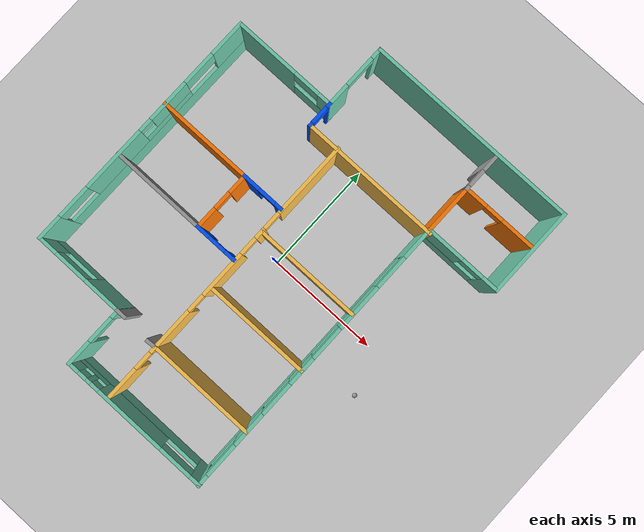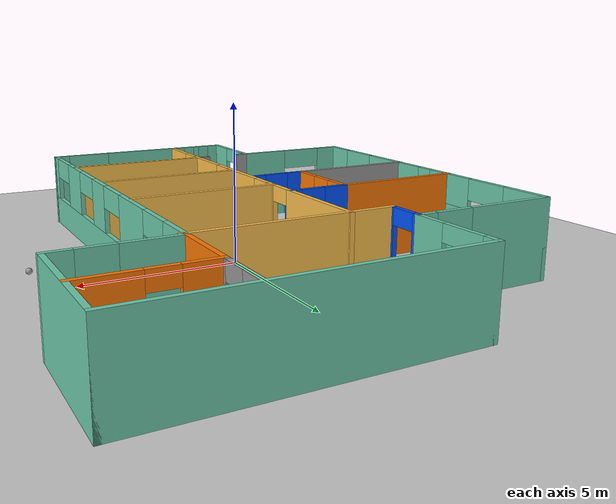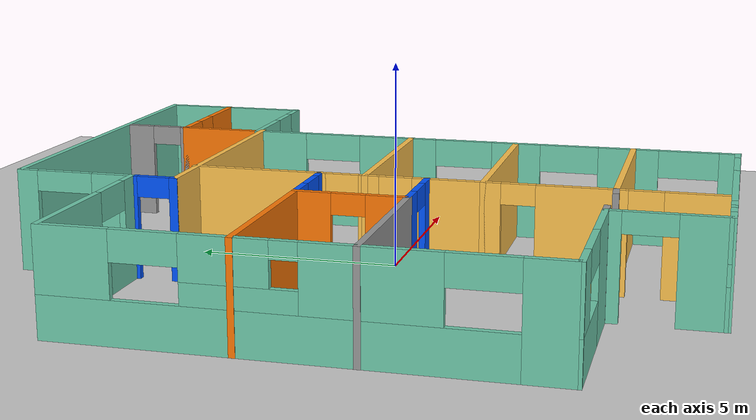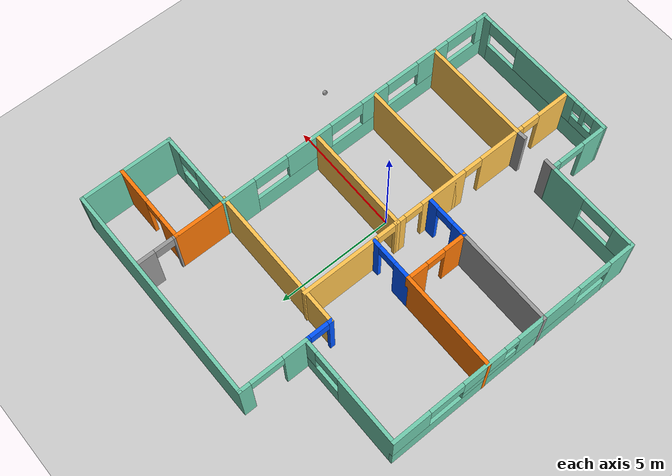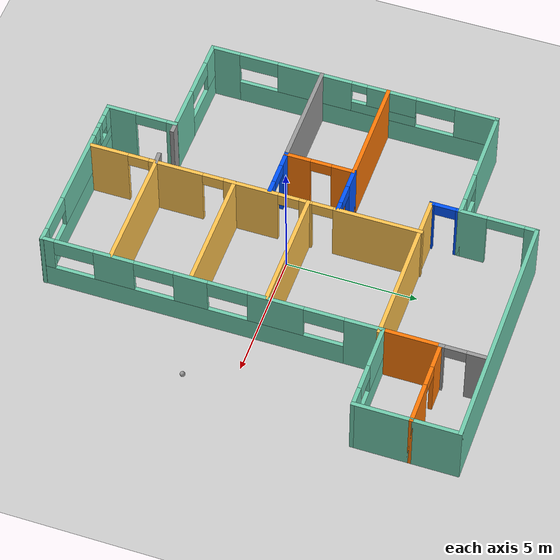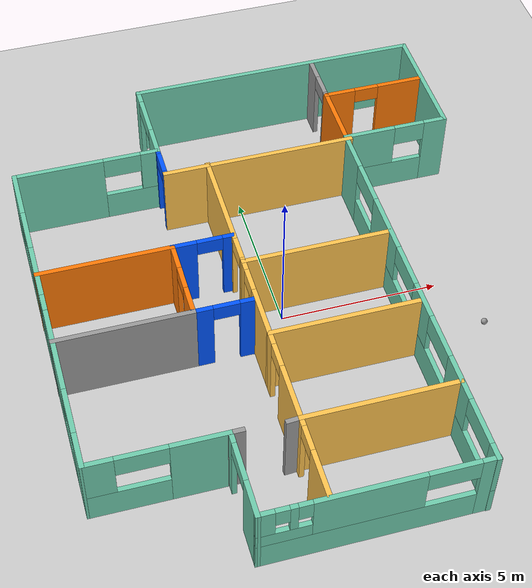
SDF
<sdf version="1.6">
 <world name="default">
  <model name="ground_plane">
   <static>1</static>
   <link name="link">
    <collision name="collision">
     <geometry><plane><normal>0 0 1</normal><size>100 100</size></plane></geometry>
     <surface><friction><ode><mu>100</mu><mu2>50</mu2></ode></friction></surface>
    </collision>
    <visual name="visual">
     <cast_shadows>0</cast_shadows>
     <geometry><plane><normal>0 0 1</normal><size>100 100</size></plane></geometry>
     <material>
      <script><uri>file://media/materials/scripts/gazebo.material</uri><name>Gazebo/Grey</name></script>
     </material>
    </visual>
   </link>
  </model>
  <model name="Building_0">
   <pose>-0.10939 0.312167 0 0 -0 0</pose>
   <link name="Wall_0">
    <pose>-6.97053 -0.091308 0 0 -0 1.5708</pose>
    <visual name="Wall_0_Visual_0">
     <pose>-5.0443 0 1.25 0 -0 0</pose>
     <geometry><box><size>1.1614 0.15 2.5</size></box></geometry>
     <material>
      <script><uri>file://media/materials/scripts/gazebo.material</uri><name>Gazebo/Grey</name></script>
      <ambient>0.435294 0.796078 0.67451 1</ambient>
     </material>
     <meta><layer>0</layer></meta>
    </visual>
    <collision name="Wall_0_Collision_0">
     <geometry><box><size>1.1614 0.15 2.5</size></box></geometry>
     <pose>-5.0443 0 1.25 0 -0 0</pose>
    </collision>
    <visual name="Wall_0_Visual_1">
     <pose>0.580698 0 0.5 0 -0 0</pose>
     <geometry><box><size>10.0886 0.15 1</size></box></geometry>
     <material>
      <script><uri>file://media/materials/scripts/gazebo.material</uri><name>Gazebo/Grey</name></script>
      <ambient>0.435294 0.796078 0.67451 1</ambient>
     </material>
     <meta><layer>0</layer></meta>
    </visual>
    <collision name="Wall_0_Collision_1">
     <geometry><box><size>10.0886 0.15 1</size></box></geometry>
     <pose>0.580698 0 0.5 0 -0 0</pose>
    </collision>
    <visual name="Wall_0_Visual_2">
     <pose>-1.51094 0 1.75 0 -0 0</pose>
     <geometry><box><size>2.90533 0.15 1.5</size></box></geometry>
     <material>
      <script><uri>file://media/materials/scripts/gazebo.material</uri><name>Gazebo/Grey</name></script>
      <ambient>0.435294 0.796078 0.67451 1</ambient>
     </material>
     <meta><layer>0</layer></meta>
    </visual>
    <collision name="Wall_0_Collision_2">
     <geometry><box><size>2.90533 0.15 1.5</size></box></geometry>
     <pose>-1.51094 0 1.75 0 -0 0</pose>
    </collision>
    <visual name="Wall_0_Visual_3">
     <pose>4.78872 0 1.75 0 -0 0</pose>
     <geometry><box><size>1.67255 0.15 1.5</size></box></geometry>
     <material>
      <script><uri>file://media/materials/scripts/gazebo.material</uri><name>Gazebo/Grey</name></script>
      <ambient>0.435294 0.796078 0.67451 1</ambient>
     </material>
     <meta><layer>0</layer></meta>
    </visual>
    <collision name="Wall_0_Collision_3">
     <geometry><box><size>1.67255 0.15 1.5</size></box></geometry>
     <pose>4.78872 0 1.75 0 -0 0</pose>
    </collision>
    <visual name="Wall_0_Visual_4">
     <pose>1.19709 0 1.25 0 -0 0</pose>
     <geometry><box><size>2.51072 0.15 0.5</size></box></geometry>
     <material>
      <script><uri>file://media/materials/scripts/gazebo.material</uri><name>Gazebo/Grey</name></script>
      <ambient>0.435294 0.796078 0.67451 1</ambient>
     </material>
     <meta><layer>0</layer></meta>
    </visual>
    <collision name="Wall_0_Collision_4">
     <geometry><box><size>2.51072 0.15 0.5</size></box></geometry>
     <pose>1.19709 0 1.25 0 -0 0</pose>
    </collision>
    <visual name="Wall_0_Visual_5">
     <pose>1.49709 0 2 0 -0 0</pose>
     <geometry><box><size>1.91072 0.15 1</size></box></geometry>
     <material>
      <script><uri>file://media/materials/scripts/gazebo.material</uri><name>Gazebo/Grey</name></script>
      <ambient>0.435294 0.796078 0.67451 1</ambient>
     </material>
     <meta><layer>0</layer></meta>
    </visual>
    <collision name="Wall_0_Collision_5">
     <geometry><box><size>1.91072 0.15 1</size></box></geometry>
     <pose>1.49709 0 2 0 -0 0</pose>
    </collision>
    <visual name="Wall_0_Visual_6">
     <pose>-3.7136 0 2.15 0 -0 0</pose>
     <geometry><box><size>1.5 0.15 0.7</size></box></geometry>
     <material>
      <script><uri>file://media/materials/scripts/gazebo.material</uri><name>Gazebo/Grey</name></script>
      <ambient>0.435294 0.796078 0.67451 1</ambient>
     </material>
     <meta><layer>0</layer></meta>
    </visual>
    <collision name="Wall_0_Collision_6">
     <geometry><box><size>1.5 0.15 0.7</size></box></geometry>
     <pose>-3.7136 0 2.15 0 -0 0</pose>
    </collision>
    <visual name="Wall_0_Visual_7">
     <pose>3.20245 0 2.15 0 -0 0</pose>
     <geometry><box><size>1.5 0.15 0.7</size></box></geometry>
     <material>
      <script><uri>file://media/materials/scripts/gazebo.material</uri><name>Gazebo/Grey</name></script>
      <ambient>0.435294 0.796078 0.67451 1</ambient>
     </material>
     <meta><layer>0</layer></meta>
    </visual>
    <collision name="Wall_0_Collision_7">
     <geometry><box><size>1.5 0.15 0.7</size></box></geometry>
     <pose>3.20245 0 2.15 0 -0 0</pose>
    </collision>
    <visual name="Wall_0_Visual_8">
     <pose>0.241731 0 2.3 0 -0 0</pose>
     <geometry><box><size>0.6 0.15 0.4</size></box></geometry>
     <material>
      <script><uri>file://media/materials/scripts/gazebo.material</uri><name>Gazebo/Grey</name></script>
      <ambient>0.435294 0.796078 0.67451 1</ambient>
     </material>
     <meta><layer>0</layer></meta>
    </visual>
    <collision name="Wall_0_Collision_8">
     <geometry><box><size>0.6 0.15 0.4</size></box></geometry>
     <pose>0.241731 0 2.3 0 -0 0</pose>
    </collision>
   </link>
   <link name="Wall_1">
    <pose>-4.67053 5.45869 0 0 -0 0</pose>
    <visual name="Wall_1_Visual_0">
     <pose>-0.923744 0 1.25 0 -0 0</pose>
     <geometry><box><size>2.90251 0.15 2.5</size></box></geometry>
     <material>
      <script><uri>file://media/materials/scripts/gazebo.material</uri><name>Gazebo/Grey</name></script>
      <ambient>0.435294 0.796078 0.67451 1</ambient>
     </material>
     <meta><layer>0</layer></meta>
    </visual>
    <collision name="Wall_1_Collision_0">
     <geometry><box><size>2.90251 0.15 2.5</size></box></geometry>
     <pose>-0.923744 0 1.25 0 -0 0</pose>
    </collision>
    <visual name="Wall_1_Visual_1">
     <pose>1.45126 0 0.5 0 -0 0</pose>
     <geometry><box><size>1.84749 0.15 1</size></box></geometry>
     <material>
      <script><uri>file://media/materials/scripts/gazebo.material</uri><name>Gazebo/Grey</name></script>
      <ambient>0.435294 0.796078 0.67451 1</ambient>
     </material>
     <meta><layer>0</layer></meta>
    </visual>
    <collision name="Wall_1_Collision_1">
     <geometry><box><size>1.84749 0.15 1</size></box></geometry>
     <pose>1.45126 0 0.5 0 -0 0</pose>
    </collision>
    <visual name="Wall_1_Visual_2">
     <pose>2.05126 0 1.75 0 -0 0</pose>
     <geometry><box><size>0.647488 0.15 1.5</size></box></geometry>
     <material>
      <script><uri>file://media/materials/scripts/gazebo.material</uri><name>Gazebo/Grey</name></script>
      <ambient>0.435294 0.796078 0.67451 1</ambient>
     </material>
     <meta><layer>0</layer></meta>
    </visual>
    <collision name="Wall_1_Collision_2">
     <geometry><box><size>0.647488 0.15 1.5</size></box></geometry>
     <pose>2.05126 0 1.75 0 -0 0</pose>
    </collision>
    <visual name="Wall_1_Visual_3">
     <pose>1.12751 0 2.15 0 -0 0</pose>
     <geometry><box><size>1.2 0.15 0.7</size></box></geometry>
     <material>
      <script><uri>file://media/materials/scripts/gazebo.material</uri><name>Gazebo/Grey</name></script>
      <ambient>0.435294 0.796078 0.67451 1</ambient>
     </material>
     <meta><layer>0</layer></meta>
    </visual>
    <collision name="Wall_1_Collision_3">
     <geometry><box><size>1.2 0.15 0.7</size></box></geometry>
     <pose>1.12751 0 2.15 0 -0 0</pose>
    </collision>
   </link>
   <link name="Wall_10">
    <pose>5.30447 4.45869 0 0 -0 3.14159</pose>
    <visual name="Wall_10_Visual_0">
     <pose>-1.36207 0 1.25 0 -0 0</pose>
     <geometry><box><size>0.775853 0.15 2.5</size></box></geometry>
     <material>
      <script><uri>file://media/materials/scripts/gazebo.material</uri><name>Gazebo/Grey</name></script>
      <ambient>0.435294 0.796078 0.67451 1</ambient>
     </material>
     <meta><layer>0</layer></meta>
    </visual>
    <collision name="Wall_10_Collision_0">
     <geometry><box><size>0.775853 0.15 2.5</size></box></geometry>
     <pose>-1.36207 0 1.25 0 -0 0</pose>
    </collision>
    <visual name="Wall_10_Visual_1">
     <pose>0.387926 0 0.5 0 -0 0</pose>
     <geometry><box><size>2.72415 0.15 1</size></box></geometry>
     <material>
      <script><uri>file://media/materials/scripts/gazebo.material</uri><name>Gazebo/Grey</name></script>
      <ambient>0.435294 0.796078 0.67451 1</ambient>
     </material>
     <meta><layer>0</layer></meta>
    </visual>
    <collision name="Wall_10_Collision_1">
     <geometry><box><size>2.72415 0.15 1</size></box></geometry>
     <pose>0.387926 0 0.5 0 -0 0</pose>
    </collision>
    <visual name="Wall_10_Visual_2">
     <pose>0.887926 0 1.75 0 -0 0</pose>
     <geometry><box><size>1.72415 0.15 1.5</size></box></geometry>
     <material>
      <script><uri>file://media/materials/scripts/gazebo.material</uri><name>Gazebo/Grey</name></script>
      <ambient>0.435294 0.796078 0.67451 1</ambient>
     </material>
     <meta><layer>0</layer></meta>
    </visual>
    <collision name="Wall_10_Collision_2">
     <geometry><box><size>1.72415 0.15 1.5</size></box></geometry>
     <pose>0.887926 0 1.75 0 -0 0</pose>
    </collision>
    <visual name="Wall_10_Visual_3">
     <pose>-0.474147 0 2.15 0 -0 0</pose>
     <geometry><box><size>1 0.15 0.7</size></box></geometry>
     <material>
      <script><uri>file://media/materials/scripts/gazebo.material</uri><name>Gazebo/Grey</name></script>
      <ambient>0.435294 0.796078 0.67451 1</ambient>
     </material>
     <meta><layer>0</layer></meta>
    </visual>
    <collision name="Wall_10_Collision_3">
     <geometry><box><size>1 0.15 0.7</size></box></geometry>
     <pose>-0.474147 0 2.15 0 -0 0</pose>
    </collision>
   </link>
   <link name="Wall_11">
    <pose>3.63708 -1.92496 0 0 0 -1.5696</pose>
    <visual name="Wall_11_Visual_0">
     <pose>-5.71761 0 1.25 0 -0 0</pose>
     <geometry><box><size>1.48209 0.15 2.5</size></box></geometry>
     <material>
      <script><uri>file://media/materials/scripts/gazebo.material</uri><name>Gazebo/Grey</name></script>
      <ambient>0.435294 0.796078 0.67451 1</ambient>
     </material>
     <meta><layer>0</layer></meta>
    </visual>
    <collision name="Wall_11_Collision_0">
     <geometry><box><size>1.48209 0.15 2.5</size></box></geometry>
     <pose>-5.71761 0 1.25 0 -0 0</pose>
    </collision>
    <visual name="Wall_11_Visual_1">
     <pose>0.741046 0 0.5 0 -0 0</pose>
     <geometry><box><size>11.4352 0.15 1</size></box></geometry>
     <material>
      <script><uri>file://media/materials/scripts/gazebo.material</uri><name>Gazebo/Grey</name></script>
      <ambient>0.435294 0.796078 0.67451 1</ambient>
     </material>
     <meta><layer>0</layer></meta>
    </visual>
    <collision name="Wall_11_Collision_1">
     <geometry><box><size>11.4352 0.15 1</size></box></geometry>
     <pose>0.741046 0 0.5 0 -0 0</pose>
    </collision>
    <visual name="Wall_11_Visual_2">
     <pose>-2.4339 0 1.75 0 -0 0</pose>
     <geometry><box><size>2.08532 0.15 1.5</size></box></geometry>
     <material>
      <script><uri>file://media/materials/scripts/gazebo.material</uri><name>Gazebo/Grey</name></script>
      <ambient>0.435294 0.796078 0.67451 1</ambient>
     </material>
     <meta><layer>0</layer></meta>
    </visual>
    <collision name="Wall_11_Collision_2">
     <geometry><box><size>2.08532 0.15 1.5</size></box></geometry>
     <pose>-2.4339 0 1.75 0 -0 0</pose>
    </collision>
    <visual name="Wall_11_Visual_3">
     <pose>0.746585 0 1.75 0 -0 0</pose>
     <geometry><box><size>1.27564 0.15 1.5</size></box></geometry>
     <material>
      <script><uri>file://media/materials/scripts/gazebo.material</uri><name>Gazebo/Grey</name></script>
      <ambient>0.435294 0.796078 0.67451 1</ambient>
     </material>
     <meta><layer>0</layer></meta>
    </visual>
    <collision name="Wall_11_Collision_3">
     <geometry><box><size>1.27564 0.15 1.5</size></box></geometry>
     <pose>0.746585 0 1.75 0 -0 0</pose>
    </collision>
    <visual name="Wall_11_Visual_4">
     <pose>3.6495 0 1.75 0 -0 0</pose>
     <geometry><box><size>1.53019 0.15 1.5</size></box></geometry>
     <material>
      <script><uri>file://media/materials/scripts/gazebo.material</uri><name>Gazebo/Grey</name></script>
      <ambient>0.435294 0.796078 0.67451 1</ambient>
     </material>
     <meta><layer>0</layer></meta>
    </visual>
    <collision name="Wall_11_Collision_4">
     <geometry><box><size>1.53019 0.15 1.5</size></box></geometry>
     <pose>3.6495 0 1.75 0 -0 0</pose>
    </collision>
    <visual name="Wall_11_Visual_5">
     <pose>6.18662 0 1.75 0 -0 0</pose>
     <geometry><box><size>0.544056 0.15 1.5</size></box></geometry>
     <material>
      <script><uri>file://media/materials/scripts/gazebo.material</uri><name>Gazebo/Grey</name></script>
      <ambient>0.435294 0.796078 0.67451 1</ambient>
     </material>
     <meta><layer>0</layer></meta>
    </visual>
    <collision name="Wall_11_Collision_5">
     <geometry><box><size>0.544056 0.15 1.5</size></box></geometry>
     <pose>6.18662 0 1.75 0 -0 0</pose>
    </collision>
    <visual name="Wall_11_Visual_6">
     <pose>-4.22656 0 2.15 0 -0 0</pose>
     <geometry><box><size>1.5 0.15 0.7</size></box></geometry>
     <material>
      <script><uri>file://media/materials/scripts/gazebo.material</uri><name>Gazebo/Grey</name></script>
      <ambient>0.435294 0.796078 0.67451 1</ambient>
     </material>
     <meta><layer>0</layer></meta>
    </visual>
    <collision name="Wall_11_Collision_6">
     <geometry><box><size>1.5 0.15 0.7</size></box></geometry>
     <pose>-4.22656 0 2.15 0 -0 0</pose>
    </collision>
    <visual name="Wall_11_Visual_7">
     <pose>-0.641237 0 2.15 0 -0 0</pose>
     <geometry><box><size>1.5 0.15 0.7</size></box></geometry>
     <material>
      <script><uri>file://media/materials/scripts/gazebo.material</uri><name>Gazebo/Grey</name></script>
      <ambient>0.435294 0.796078 0.67451 1</ambient>
     </material>
     <meta><layer>0</layer></meta>
    </visual>
    <collision name="Wall_11_Collision_7">
     <geometry><box><size>1.5 0.15 0.7</size></box></geometry>
     <pose>-0.641237 0 2.15 0 -0 0</pose>
    </collision>
    <visual name="Wall_11_Visual_8">
     <pose>2.13441 0 2.15 0 -0 0</pose>
     <geometry><box><size>1.5 0.15 0.7</size></box></geometry>
     <material>
      <script><uri>file://media/materials/scripts/gazebo.material</uri><name>Gazebo/Grey</name></script>
      <ambient>0.435294 0.796078 0.67451 1</ambient>
     </material>
     <meta><layer>0</layer></meta>
    </visual>
    <collision name="Wall_11_Collision_8">
     <geometry><box><size>1.5 0.15 0.7</size></box></geometry>
     <pose>2.13441 0 2.15 0 -0 0</pose>
    </collision>
    <visual name="Wall_11_Visual_9">
     <pose>5.1646 0 2.15 0 -0 0</pose>
     <geometry><box><size>1.5 0.15 0.7</size></box></geometry>
     <material>
      <script><uri>file://media/materials/scripts/gazebo.material</uri><name>Gazebo/Grey</name></script>
      <ambient>0.435294 0.796078 0.67451 1</ambient>
     </material>
     <meta><layer>0</layer></meta>
    </visual>
    <collision name="Wall_11_Collision_9">
     <geometry><box><size>1.5 0.15 0.7</size></box></geometry>
     <pose>5.1646 0 2.15 0 -0 0</pose>
    </collision>
   </link>
   <link name="Wall_12">
    <pose>0.359891 -8.2934 0 0 -0 3.14159</pose>
    <visual name="Wall_12_Visual_0">
     <pose>-3.10646 0 1.25 0 -0 0</pose>
     <geometry><box><size>0.537078 0.15 2.5</size></box></geometry>
     <material>
      <script><uri>file://media/materials/scripts/gazebo.material</uri><name>Gazebo/Grey</name></script>
      <ambient>0.435294 0.796078 0.67451 1</ambient>
     </material>
     <meta><layer>0</layer></meta>
    </visual>
    <collision name="Wall_12_Collision_0">
     <geometry><box><size>0.537078 0.15 2.5</size></box></geometry>
     <pose>-3.10646 0 1.25 0 -0 0</pose>
    </collision>
    <visual name="Wall_12_Visual_1">
     <pose>0.268539 0 0.5 0 -0 0</pose>
     <geometry><box><size>6.21292 0.15 1</size></box></geometry>
     <material>
      <script><uri>file://media/materials/scripts/gazebo.material</uri><name>Gazebo/Grey</name></script>
      <ambient>0.435294 0.796078 0.67451 1</ambient>
     </material>
     <meta><layer>0</layer></meta>
    </visual>
    <collision name="Wall_12_Collision_1">
     <geometry><box><size>6.21292 0.15 1</size></box></geometry>
     <pose>0.268539 0 0.5 0 -0 0</pose>
    </collision>
    <visual name="Wall_12_Visual_2">
     <pose>0.234137 0 1.75 0 -0 0</pose>
     <geometry><box><size>3.14412 0.15 1.5</size></box></geometry>
     <material>
      <script><uri>file://media/materials/scripts/gazebo.material</uri><name>Gazebo/Grey</name></script>
      <ambient>0.435294 0.796078 0.67451 1</ambient>
     </material>
     <meta><layer>0</layer></meta>
    </visual>
    <collision name="Wall_12_Collision_2">
     <geometry><box><size>3.14412 0.15 1.5</size></box></geometry>
     <pose>0.234137 0 1.75 0 -0 0</pose>
    </collision>
    <visual name="Wall_12_Visual_3">
     <pose>2.5906 0 1.25 0 -0 0</pose>
     <geometry><box><size>1.5688 0.15 0.5</size></box></geometry>
     <material>
      <script><uri>file://media/materials/scripts/gazebo.material</uri><name>Gazebo/Grey</name></script>
      <ambient>0.435294 0.796078 0.67451 1</ambient>
     </material>
     <meta><layer>0</layer></meta>
    </visual>
    <collision name="Wall_12_Collision_3">
     <geometry><box><size>1.5688 0.15 0.5</size></box></geometry>
     <pose>2.5906 0 1.25 0 -0 0</pose>
    </collision>
    <visual name="Wall_12_Visual_4">
     <pose>2.31846 0 2 0 -0 0</pose>
     <geometry><box><size>0.224526 0.15 1</size></box></geometry>
     <material>
      <script><uri>file://media/materials/scripts/gazebo.material</uri><name>Gazebo/Grey</name></script>
      <ambient>0.435294 0.796078 0.67451 1</ambient>
     </material>
     <meta><layer>0</layer></meta>
    </visual>
    <collision name="Wall_12_Collision_4">
     <geometry><box><size>0.224526 0.15 1</size></box></geometry>
     <pose>2.31846 0 2 0 -0 0</pose>
    </collision>
    <visual name="Wall_12_Visual_5">
     <pose>3.10286 0 2 0 -0 0</pose>
     <geometry><box><size>0.544278 0.15 1</size></box></geometry>
     <material>
      <script><uri>file://media/materials/scripts/gazebo.material</uri><name>Gazebo/Grey</name></script>
      <ambient>0.435294 0.796078 0.67451 1</ambient>
     </material>
     <meta><layer>0</layer></meta>
    </visual>
    <collision name="Wall_12_Collision_5">
     <geometry><box><size>0.544278 0.15 1</size></box></geometry>
     <pose>3.10286 0 2 0 -0 0</pose>
    </collision>
    <visual name="Wall_12_Visual_6">
     <pose>-2.08792 0 2.15 0 -0 0</pose>
     <geometry><box><size>1.5 0.15 0.7</size></box></geometry>
     <material>
      <script><uri>file://media/materials/scripts/gazebo.material</uri><name>Gazebo/Grey</name></script>
      <ambient>0.435294 0.796078 0.67451 1</ambient>
     </material>
     <meta><layer>0</layer></meta>
    </visual>
    <collision name="Wall_12_Collision_6">
     <geometry><box><size>1.5 0.15 0.7</size></box></geometry>
     <pose>-2.08792 0 2.15 0 -0 0</pose>
    </collision>
    <visual name="Wall_12_Visual_7">
     <pose>2.0062 0 2.2 0 -0 0</pose>
     <geometry><box><size>0.4 0.15 0.6</size></box></geometry>
     <material>
      <script><uri>file://media/materials/scripts/gazebo.material</uri><name>Gazebo/Grey</name></script>
      <ambient>0.435294 0.796078 0.67451 1</ambient>
     </material>
     <meta><layer>0</layer></meta>
    </visual>
    <collision name="Wall_12_Collision_7">
     <geometry><box><size>0.4 0.15 0.6</size></box></geometry>
     <pose>2.0062 0 2.2 0 -0 0</pose>
    </collision>
    <visual name="Wall_12_Visual_8">
     <pose>2.63072 0 2.2 0 -0 0</pose>
     <geometry><box><size>0.4 0.15 0.6</size></box></geometry>
     <material>
      <script><uri>file://media/materials/scripts/gazebo.material</uri><name>Gazebo/Grey</name></script>
      <ambient>0.435294 0.796078 0.67451 1</ambient>
     </material>
     <meta><layer>0</layer></meta>
    </visual>
    <collision name="Wall_12_Collision_8">
     <geometry><box><size>0.4 0.15 0.6</size></box></geometry>
     <pose>2.63072 0 2.2 0 -0 0</pose>
    </collision>
   </link>
   <link name="Wall_15">
    <pose>-2.93906 -6.97496 0 0 -0 1.57001</pose>
    <visual name="Wall_15_Visual_0">
     <pose>-0.811109 0 1.25 0 -0 0</pose>
     <geometry><box><size>1.16466 0.15 2.5</size></box></geometry>
     <material>
      <script><uri>file://media/materials/scripts/gazebo.material</uri><name>Gazebo/Grey</name></script>
      <ambient>0.435294 0.796078 0.67451 1</ambient>
     </material>
     <meta><layer>0</layer></meta>
    </visual>
    <collision name="Wall_15_Collision_0">
     <geometry><box><size>1.16466 0.15 2.5</size></box></geometry>
     <pose>-0.811109 0 1.25 0 -0 0</pose>
    </collision>
    <visual name="Wall_15_Visual_1">
     <pose>1.18233 0 1.25 0 -0 0</pose>
     <geometry><box><size>0.422219 0.15 2.5</size></box></geometry>
     <material>
      <script><uri>file://media/materials/scripts/gazebo.material</uri><name>Gazebo/Grey</name></script>
      <ambient>0.435294 0.796078 0.67451 1</ambient>
     </material>
     <meta><layer>0</layer></meta>
    </visual>
    <collision name="Wall_15_Collision_1">
     <geometry><box><size>0.422219 0.15 2.5</size></box></geometry>
     <pose>1.18233 0 1.25 0 -0 0</pose>
    </collision>
    <visual name="Wall_15_Visual_2">
     <pose>0.371221 0 2.25 0 -0 0</pose>
     <geometry><box><size>1.2 0.15 0.5</size></box></geometry>
     <material>
      <script><uri>file://media/materials/scripts/gazebo.material</uri><name>Gazebo/Grey</name></script>
      <ambient>0.435294 0.796078 0.67451 1</ambient>
     </material>
     <meta><layer>0</layer></meta>
    </visual>
    <collision name="Wall_15_Collision_2">
     <geometry><box><size>1.2 0.15 0.5</size></box></geometry>
     <pose>0.371221 0 2.25 0 -0 0</pose>
    </collision>
   </link>
   <link name="Wall_16">
    <pose>-4.96188 -5.64891 0 0 -0 3.13781</pose>
    <visual name="Wall_16_Visual_0">
     <pose>-1.21249 0 1.25 0 -0 0</pose>
     <geometry><box><size>1.74235 0.15 2.5</size></box></geometry>
     <material>
      <script><uri>file://media/materials/scripts/gazebo.material</uri><name>Gazebo/Grey</name></script>
      <ambient>0.435294 0.796078 0.67451 1</ambient>
     </material>
     <meta><layer>0</layer></meta>
    </visual>
    <collision name="Wall_16_Collision_0">
     <geometry><box><size>1.74235 0.15 2.5</size></box></geometry>
     <pose>-1.21249 0 1.25 0 -0 0</pose>
    </collision>
    <visual name="Wall_16_Visual_1">
     <pose>0.871176 0 0.5 0 -0 0</pose>
     <geometry><box><size>2.42497 0.15 1</size></box></geometry>
     <material>
      <script><uri>file://media/materials/scripts/gazebo.material</uri><name>Gazebo/Grey</name></script>
      <ambient>0.435294 0.796078 0.67451 1</ambient>
     </material>
     <meta><layer>0</layer></meta>
    </visual>
    <collision name="Wall_16_Collision_1">
     <geometry><box><size>2.42497 0.15 1</size></box></geometry>
     <pose>0.871176 0 0.5 0 -0 0</pose>
    </collision>
    <visual name="Wall_16_Visual_2">
     <pose>1.62118 0 1.75 0 -0 0</pose>
     <geometry><box><size>0.924973 0.15 1.5</size></box></geometry>
     <material>
      <script><uri>file://media/materials/scripts/gazebo.material</uri><name>Gazebo/Grey</name></script>
      <ambient>0.435294 0.796078 0.67451 1</ambient>
     </material>
     <meta><layer>0</layer></meta>
    </visual>
    <collision name="Wall_16_Collision_2">
     <geometry><box><size>0.924973 0.15 1.5</size></box></geometry>
     <pose>1.62118 0 1.75 0 -0 0</pose>
    </collision>
    <visual name="Wall_16_Visual_3">
     <pose>0.40869 0 2.15 0 -0 0</pose>
     <geometry><box><size>1.5 0.15 0.7</size></box></geometry>
     <material>
      <script><uri>file://media/materials/scripts/gazebo.material</uri><name>Gazebo/Grey</name></script>
      <ambient>0.435294 0.796078 0.67451 1</ambient>
     </material>
     <meta><layer>0</layer></meta>
    </visual>
    <collision name="Wall_16_Collision_3">
     <geometry><box><size>1.5 0.15 0.7</size></box></geometry>
     <pose>0.40869 0 2.15 0 -0 0</pose>
    </collision>
   </link>
   <link name="Wall_18">
    <collision name="Wall_18_Collision">
     <geometry><box><size>2.25 0.15 2.5</size></box></geometry>
     <pose>0 0 1.25 0 -0 0</pose>
    </collision>
    <visual name="Wall_18_Visual">
     <pose>0 0 1.25 0 -0 0</pose>
     <geometry><box><size>2.25 0.15 2.5</size></box></geometry>
     <material>
      <script><uri>file://media/materials/scripts/gazebo.material</uri><name>Gazebo/Grey</name></script>
      <ambient>0.996078 0.47451 0.0196078 1</ambient>
     </material>
     <meta><layer>0</layer></meta>
    </visual>
    <pose>3.62947 5.50869 0 0 -0 1.5708</pose>
   </link>
   <link name="Wall_19">
    <pose>5.30447 6.55869 0 0 -0 0</pose>
    <visual name="Wall_19_Visual_0">
     <pose>-1.21958 0 1.25 0 -0 0</pose>
     <geometry><box><size>1.06084 0.15 2.5</size></box></geometry>
     <material>
      <script><uri>file://media/materials/scripts/gazebo.material</uri><name>Gazebo/Grey</name></script>
      <ambient>0.996078 0.47451 0.0196078 1</ambient>
     </material>
     <meta><layer>0</layer></meta>
    </visual>
    <collision name="Wall_19_Collision_0">
     <geometry><box><size>1.06084 0.15 2.5</size></box></geometry>
     <pose>-1.21958 0 1.25 0 -0 0</pose>
    </collision>
    <visual name="Wall_19_Visual_1">
     <pose>0.930419 0 1.25 0 -0 0</pose>
     <geometry><box><size>1.63916 0.15 2.5</size></box></geometry>
     <material>
      <script><uri>file://media/materials/scripts/gazebo.material</uri><name>Gazebo/Grey</name></script>
      <ambient>0.996078 0.47451 0.0196078 1</ambient>
     </material>
     <meta><layer>0</layer></meta>
    </visual>
    <collision name="Wall_19_Collision_1">
     <geometry><box><size>1.63916 0.15 2.5</size></box></geometry>
     <pose>0.930419 0 1.25 0 -0 0</pose>
    </collision>
    <visual name="Wall_19_Visual_2">
     <pose>-0.289163 0 2.25 0 -0 0</pose>
     <geometry><box><size>0.8 0.15 0.5</size></box></geometry>
     <material>
      <script><uri>file://media/materials/scripts/gazebo.material</uri><name>Gazebo/Grey</name></script>
      <ambient>0.996078 0.47451 0.0196078 1</ambient>
     </material>
     <meta><layer>0</layer></meta>
    </visual>
    <collision name="Wall_19_Collision_2">
     <geometry><box><size>0.8 0.15 0.5</size></box></geometry>
     <pose>-0.289163 0 2.25 0 -0 0</pose>
    </collision>
   </link>
   <link name="Wall_21">
    <pose>3.62947 7.35869 0 0 0 -1.5708</pose>
    <visual name="Wall_21_Visual_0">
     <pose>-0.514522 0 1.25 0 -0 0</pose>
     <geometry><box><size>0.720956 0.15 2.5</size></box></geometry>
     <material>
      <script><uri>file://media/materials/scripts/gazebo.material</uri><name>Gazebo/Grey</name></script>
      <ambient>1 1 1 1</ambient>
     </material>
     <meta><layer>0</layer></meta>
    </visual>
    <collision name="Wall_21_Collision_0">
     <geometry><box><size>0.720956 0.15 2.5</size></box></geometry>
     <pose>-0.514522 0 1.25 0 -0 0</pose>
    </collision>
    <visual name="Wall_21_Visual_1">
     <pose>0.760478 0 1.25 0 -0 0</pose>
     <geometry><box><size>0.229044 0.15 2.5</size></box></geometry>
     <material>
      <script><uri>file://media/materials/scripts/gazebo.material</uri><name>Gazebo/Grey</name></script>
      <ambient>1 1 1 1</ambient>
     </material>
     <meta><layer>0</layer></meta>
    </visual>
    <collision name="Wall_21_Collision_1">
     <geometry><box><size>0.229044 0.15 2.5</size></box></geometry>
     <pose>0.760478 0 1.25 0 -0 0</pose>
    </collision>
    <visual name="Wall_21_Visual_2">
     <pose>0.245956 0 2.25 0 -0 0</pose>
     <geometry><box><size>0.8 0.15 0.5</size></box></geometry>
     <material>
      <script><uri>file://media/materials/scripts/gazebo.material</uri><name>Gazebo/Grey</name></script>
      <ambient>1 1 1 1</ambient>
     </material>
     <meta><layer>0</layer></meta>
    </visual>
    <collision name="Wall_21_Collision_2">
     <geometry><box><size>0.8 0.15 0.5</size></box></geometry>
     <pose>0.245956 0 2.25 0 -0 0</pose>
    </collision>
   </link>
   <link name="Wall_23">
    <pose>-2.37053 4.90869 0 0 0 -1.5708</pose>
    <visual name="Wall_23_Visual_0">
     <pose>-0.504253 0 1.25 0 -0 0</pose>
     <geometry><box><size>0.241494 0.15 2.5</size></box></geometry>
     <material>
      <script><uri>file://media/materials/scripts/gazebo.material</uri><name>Gazebo/Grey</name></script>
      <ambient>0 0.333333 1 1</ambient>
     </material>
     <meta><layer>0</layer></meta>
    </visual>
    <collision name="Wall_23_Collision_0">
     <geometry><box><size>0.241494 0.15 2.5</size></box></geometry>
     <pose>-0.504253 0 1.25 0 -0 0</pose>
    </collision>
    <visual name="Wall_23_Visual_1">
     <pose>0.520747 0 1.25 0 -0 0</pose>
     <geometry><box><size>0.208506 0.15 2.5</size></box></geometry>
     <material>
      <script><uri>file://media/materials/scripts/gazebo.material</uri><name>Gazebo/Grey</name></script>
      <ambient>0 0.333333 1 1</ambient>
     </material>
     <meta><layer>0</layer></meta>
    </visual>
    <collision name="Wall_23_Collision_1">
     <geometry><box><size>0.208506 0.15 2.5</size></box></geometry>
     <pose>0.520747 0 1.25 0 -0 0</pose>
    </collision>
    <visual name="Wall_23_Visual_2">
     <pose>0.016494 0 2.25 0 -0 0</pose>
     <geometry><box><size>0.8 0.15 0.5</size></box></geometry>
     <material>
      <script><uri>file://media/materials/scripts/gazebo.material</uri><name>Gazebo/Grey</name></script>
      <ambient>0 0.333333 1 1</ambient>
     </material>
     <meta><layer>0</layer></meta>
    </visual>
    <collision name="Wall_23_Collision_2">
     <geometry><box><size>0.8 0.15 0.5</size></box></geometry>
     <pose>0.016494 0 2.25 0 -0 0</pose>
    </collision>
   </link>
   <link name="Wall_24">
    <collision name="Wall_24_Collision">
     <geometry><box><size>6.25 0.15 2.5</size></box></geometry>
     <pose>0 0 1.25 0 -0 0</pose>
    </collision>
    <visual name="Wall_24_Visual">
     <pose>0 0 1.25 0 -0 0</pose>
     <geometry><box><size>6.25 0.15 2.5</size></box></geometry>
     <material>
      <script><uri>file://media/materials/scripts/gazebo.material</uri><name>Gazebo/Grey</name></script>
      <ambient>1 0.764706 0.305882 1</ambient>
     </material>
     <meta><layer>0</layer></meta>
    </visual>
    <pose>0.679473 4.35869 0 0 -0 0</pose>
   </link>
   <link name="Wall_26">
    <pose>-0.988647 -1.89196 0 0 0 -1.5708</pose>
    <visual name="Wall_26_Visual_0">
     <pose>-4.68626 0 1.25 0 -0 0</pose>
     <geometry><box><size>3.37748 0.15 2.5</size></box></geometry>
     <material>
      <script><uri>file://media/materials/scripts/gazebo.material</uri><name>Gazebo/Grey</name></script>
      <ambient>1 0.764706 0.305882 1</ambient>
     </material>
     <meta><layer>0</layer></meta>
    </visual>
    <collision name="Wall_26_Collision_0">
     <geometry><box><size>3.37748 0.15 2.5</size></box></geometry>
     <pose>-4.68626 0 1.25 0 -0 0</pose>
    </collision>
    <visual name="Wall_26_Visual_1">
     <pose>-1.94986 0 1.25 0 -0 0</pose>
     <geometry><box><size>0.495314 0.15 2.5</size></box></geometry>
     <material>
      <script><uri>file://media/materials/scripts/gazebo.material</uri><name>Gazebo/Grey</name></script>
      <ambient>1 0.764706 0.305882 1</ambient>
     </material>
     <meta><layer>0</layer></meta>
    </visual>
    <collision name="Wall_26_Collision_1">
     <geometry><box><size>0.495314 0.15 2.5</size></box></geometry>
     <pose>-1.94986 0 1.25 0 -0 0</pose>
    </collision>
    <visual name="Wall_26_Visual_2">
     <pose>0.143458 0 1.25 0 -0 0</pose>
     <geometry><box><size>2.09133 0.15 2.5</size></box></geometry>
     <material>
      <script><uri>file://media/materials/scripts/gazebo.material</uri><name>Gazebo/Grey</name></script>
      <ambient>1 0.764706 0.305882 1</ambient>
     </material>
     <meta><layer>0</layer></meta>
    </visual>
    <collision name="Wall_26_Collision_2">
     <geometry><box><size>2.09133 0.15 2.5</size></box></geometry>
     <pose>0.143458 0 1.25 0 -0 0</pose>
    </collision>
    <visual name="Wall_26_Visual_3">
     <pose>3.03478 0 1.25 0 -0 0</pose>
     <geometry><box><size>2.09133 0.15 2.5</size></box></geometry>
     <material>
      <script><uri>file://media/materials/scripts/gazebo.material</uri><name>Gazebo/Grey</name></script>
      <ambient>1 0.764706 0.305882 1</ambient>
     </material>
     <meta><layer>0</layer></meta>
    </visual>
    <collision name="Wall_26_Collision_3">
     <geometry><box><size>2.09133 0.15 2.5</size></box></geometry>
     <pose>3.03478 0 1.25 0 -0 0</pose>
    </collision>
    <visual name="Wall_26_Visual_4">
     <pose>5.62772 0 1.25 0 -0 0</pose>
     <geometry><box><size>1.49455 0.15 2.5</size></box></geometry>
     <material>
      <script><uri>file://media/materials/scripts/gazebo.material</uri><name>Gazebo/Grey</name></script>
      <ambient>1 0.764706 0.305882 1</ambient>
     </material>
     <meta><layer>0</layer></meta>
    </visual>
    <collision name="Wall_26_Collision_4">
     <geometry><box><size>1.49455 0.15 2.5</size></box></geometry>
     <pose>5.62772 0 1.25 0 -0 0</pose>
    </collision>
    <visual name="Wall_26_Visual_5">
     <pose>-2.59752 0 2.25 0 -0 0</pose>
     <geometry><box><size>0.8 0.15 0.5</size></box></geometry>
     <material>
      <script><uri>file://media/materials/scripts/gazebo.material</uri><name>Gazebo/Grey</name></script>
      <ambient>1 0.764706 0.305882 1</ambient>
     </material>
     <meta><layer>0</layer></meta>
    </visual>
    <collision name="Wall_26_Collision_5">
     <geometry><box><size>0.8 0.15 0.5</size></box></geometry>
     <pose>-2.59752 0 2.25 0 -0 0</pose>
    </collision>
    <visual name="Wall_26_Visual_6">
     <pose>-1.30221 0 2.25 0 -0 0</pose>
     <geometry><box><size>0.8 0.15 0.5</size></box></geometry>
     <material>
      <script><uri>file://media/materials/scripts/gazebo.material</uri><name>Gazebo/Grey</name></script>
      <ambient>1 0.764706 0.305882 1</ambient>
     </material>
     <meta><layer>0</layer></meta>
    </visual>
    <collision name="Wall_26_Collision_6">
     <geometry><box><size>0.8 0.15 0.5</size></box></geometry>
     <pose>-1.30221 0 2.25 0 -0 0</pose>
    </collision>
    <visual name="Wall_26_Visual_7">
     <pose>1.58912 0 2.25 0 -0 0</pose>
     <geometry><box><size>0.8 0.15 0.5</size></box></geometry>
     <material>
      <script><uri>file://media/materials/scripts/gazebo.material</uri><name>Gazebo/Grey</name></script>
      <ambient>1 0.764706 0.305882 1</ambient>
     </material>
     <meta><layer>0</layer></meta>
    </visual>
    <collision name="Wall_26_Collision_7">
     <geometry><box><size>0.8 0.15 0.5</size></box></geometry>
     <pose>1.58912 0 2.25 0 -0 0</pose>
    </collision>
    <visual name="Wall_26_Visual_8">
     <pose>4.48045 0 2.25 0 -0 0</pose>
     <geometry><box><size>0.8 0.15 0.5</size></box></geometry>
     <material>
      <script><uri>file://media/materials/scripts/gazebo.material</uri><name>Gazebo/Grey</name></script>
      <ambient>1 0.764706 0.305882 1</ambient>
     </material>
     <meta><layer>0</layer></meta>
    </visual>
    <collision name="Wall_26_Collision_8">
     <geometry><box><size>0.8 0.15 0.5</size></box></geometry>
     <pose>4.48045 0 2.25 0 -0 0</pose>
    </collision>
   </link>
   <link name="Wall_28">
    <collision name="Wall_28_Collision">
     <geometry><box><size>4.75 0.15 2.5</size></box></geometry>
     <pose>0 0 1.25 0 -0 0</pose>
    </collision>
    <visual name="Wall_28_Visual">
     <pose>0 0 1.25 0 -0 0</pose>
     <geometry><box><size>4.75 0.15 2.5</size></box></geometry>
     <material>
      <script><uri>file://media/materials/scripts/gazebo.material</uri><name>Gazebo/Grey</name></script>
      <ambient>1 0.764706 0.305882 1</ambient>
     </material>
     <meta><layer>0</layer></meta>
    </visual>
    <pose>1.31135 0.152007 0 0 -0 0</pose>
   </link>
   <link name="Wall_30">
    <collision name="Wall_30_Collision">
     <geometry><box><size>4.75 0.15 2.5</size></box></geometry>
     <pose>0 0 1.25 0 -0 0</pose>
    </collision>
    <visual name="Wall_30_Visual">
     <pose>0 0 1.25 0 -0 0</pose>
     <geometry><box><size>4.75 0.15 2.5</size></box></geometry>
     <material>
      <script><uri>file://media/materials/scripts/gazebo.material</uri><name>Gazebo/Grey</name></script>
      <ambient>1 0.764706 0.305882 1</ambient>
     </material>
     <meta><layer>0</layer></meta>
    </visual>
    <pose>1.31135 -2.66993 0 0 -0 0</pose>
   </link>
   <link name="Wall_32">
    <collision name="Wall_32_Collision">
     <geometry><box><size>4.75 0.15 2.5</size></box></geometry>
     <pose>0 0 1.25 0 -0 0</pose>
    </collision>
    <visual name="Wall_32_Visual">
     <pose>0 0 1.25 0 -0 0</pose>
     <geometry><box><size>4.75 0.15 2.5</size></box></geometry>
     <material>
      <script><uri>file://media/materials/scripts/gazebo.material</uri><name>Gazebo/Grey</name></script>
      <ambient>1 0.764706 0.305882 1</ambient>
     </material>
     <meta><layer>0</layer></meta>
    </visual>
    <pose>1.31135 -5.70004 0 0 -0 0</pose>
   </link>
   <link name="Wall_34">
    <collision name="Wall_34_Collision">
     <geometry><box><size>0.5 0.15 2.5</size></box></geometry>
     <pose>0 0 1.25 0 -0 0</pose>
    </collision>
    <visual name="Wall_34_Visual">
     <pose>0 0 1.25 0 -0 0</pose>
     <geometry><box><size>0.5 0.15 2.5</size></box></geometry>
     <material>
      <script><uri>file://media/materials/scripts/gazebo.material</uri><name>Gazebo/Grey</name></script>
      <ambient>1 1 1 1</ambient>
     </material>
     <meta><layer>0</layer></meta>
    </visual>
    <pose>-2.77823 -5.65652 0 0 -0 0</pose>
   </link>
   <link name="Wall_36">
    <collision name="Wall_36_Collision">
     <geometry><box><size>0.520812 0.15 2.5</size></box></geometry>
     <pose>0 0 1.25 0 -0 0</pose>
    </collision>
    <visual name="Wall_36_Visual">
     <pose>0 0 1.25 0 -0 0</pose>
     <geometry><box><size>0.520812 0.15 2.5</size></box></geometry>
     <material>
      <script><uri>file://media/materials/scripts/gazebo.material</uri><name>Gazebo/Grey</name></script>
      <ambient>1 1 1 1</ambient>
     </material>
     <meta><layer>0</layer></meta>
    </visual>
    <pose>-1.17369 -5.7116 0 0 -0 0.062419</pose>
   </link>
   <link name="Wall_38">
    <collision name="Wall_38_Collision">
     <geometry><box><size>4.25 0.15 2.5</size></box></geometry>
     <pose>0 0 1.25 0 -0 0</pose>
    </collision>
    <visual name="Wall_38_Visual">
     <pose>0 0 1.25 0 -0 0</pose>
     <geometry><box><size>4.25 0.15 2.5</size></box></geometry>
     <material>
      <script><uri>file://media/materials/scripts/gazebo.material</uri><name>Gazebo/Grey</name></script>
      <ambient>0.996078 0.47451 0.0196078 1</ambient>
     </material>
     <meta><layer>0</layer></meta>
    </visual>
    <pose>-4.92947 1.26228 0 0 -0 0</pose>
   </link>
   <link name="Wall_39">
    <pose>-2.87947 -0.037724 0 0 0 -1.5708</pose>
    <visual name="Wall_39_Visual_0">
     <pose>-0.912182 0 1.25 0 -0 0</pose>
     <geometry><box><size>0.925637 0.15 2.5</size></box></geometry>
     <material>
      <script><uri>file://media/materials/scripts/gazebo.material</uri><name>Gazebo/Grey</name></script>
      <ambient>0.996078 0.47451 0.0196078 1</ambient>
     </material>
     <meta><layer>0</layer></meta>
    </visual>
    <collision name="Wall_39_Collision_0">
     <geometry><box><size>0.925637 0.15 2.5</size></box></geometry>
     <pose>-0.912182 0 1.25 0 -0 0</pose>
    </collision>
    <visual name="Wall_39_Visual_1">
     <pose>0.862818 0 1.25 0 -0 0</pose>
     <geometry><box><size>1.02436 0.15 2.5</size></box></geometry>
     <material>
      <script><uri>file://media/materials/scripts/gazebo.material</uri><name>Gazebo/Grey</name></script>
      <ambient>0.996078 0.47451 0.0196078 1</ambient>
     </material>
     <meta><layer>0</layer></meta>
    </visual>
    <collision name="Wall_39_Collision_1">
     <geometry><box><size>1.02436 0.15 2.5</size></box></geometry>
     <pose>0.862818 0 1.25 0 -0 0</pose>
    </collision>
    <visual name="Wall_39_Visual_2">
     <pose>-0.049363 0 2.25 0 -0 0</pose>
     <geometry><box><size>0.8 0.15 0.5</size></box></geometry>
     <material>
      <script><uri>file://media/materials/scripts/gazebo.material</uri><name>Gazebo/Grey</name></script>
      <ambient>0.996078 0.47451 0.0196078 1</ambient>
     </material>
     <meta><layer>0</layer></meta>
    </visual>
    <collision name="Wall_39_Collision_2">
     <geometry><box><size>0.8 0.15 0.5</size></box></geometry>
     <pose>-0.049363 0 2.25 0 -0 0</pose>
    </collision>
   </link>
   <link name="Wall_4">
    <pose>-2.37053 6.88369 0 0 -0 1.5708</pose>
    <visual name="Wall_4_Visual_0">
     <pose>-0.962348 0 1.25 0 -0 0</pose>
     <geometry><box><size>1.0753 0.15 2.5</size></box></geometry>
     <material>
      <script><uri>file://media/materials/scripts/gazebo.material</uri><name>Gazebo/Grey</name></script>
      <ambient>0.435294 0.796078 0.67451 1</ambient>
     </material>
     <meta><layer>0</layer></meta>
    </visual>
    <collision name="Wall_4_Collision_0">
     <geometry><box><size>1.0753 0.15 2.5</size></box></geometry>
     <pose>-0.962348 0 1.25 0 -0 0</pose>
    </collision>
    <visual name="Wall_4_Visual_1">
     <pose>1.23765 0 1.25 0 -0 0</pose>
     <geometry><box><size>0.524695 0.15 2.5</size></box></geometry>
     <material>
      <script><uri>file://media/materials/scripts/gazebo.material</uri><name>Gazebo/Grey</name></script>
      <ambient>0.435294 0.796078 0.67451 1</ambient>
     </material>
     <meta><layer>0</layer></meta>
    </visual>
    <collision name="Wall_4_Collision_1">
     <geometry><box><size>0.524695 0.15 2.5</size></box></geometry>
     <pose>1.23765 0 1.25 0 -0 0</pose>
    </collision>
    <visual name="Wall_4_Visual_2">
     <pose>0.275305 0 2.25 0 -0 0</pose>
     <geometry><box><size>1.4 0.15 0.5</size></box></geometry>
     <material>
      <script><uri>file://media/materials/scripts/gazebo.material</uri><name>Gazebo/Grey</name></script>
      <ambient>0.435294 0.796078 0.67451 1</ambient>
     </material>
     <meta><layer>0</layer></meta>
    </visual>
    <collision name="Wall_4_Collision_2">
     <geometry><box><size>1.4 0.15 0.5</size></box></geometry>
     <pose>0.275305 0 2.25 0 -0 0</pose>
    </collision>
   </link>
   <link name="Wall_40">
    <collision name="Wall_40_Collision">
     <geometry><box><size>4.25 0.15 2.5</size></box></geometry>
     <pose>0 0 1.25 0 -0 0</pose>
    </collision>
    <visual name="Wall_40_Visual">
     <pose>0 0 1.25 0 -0 0</pose>
     <geometry><box><size>4.25 0.15 2.5</size></box></geometry>
     <material>
      <script><uri>file://media/materials/scripts/gazebo.material</uri><name>Gazebo/Grey</name></script>
      <ambient>1 1 1 1</ambient>
     </material>
     <meta><layer>0</layer></meta>
    </visual>
    <pose>-4.92947 -1.33772 0 0 -0 3.14159</pose>
   </link>
   <link name="Wall_42">
    <pose>-1.95447 1.26228 0 0 -0 0</pose>
    <visual name="Wall_42_Visual_0">
     <pose>-0.592177 0 1.25 0 -0 0</pose>
     <geometry><box><size>0.815647 0.15 2.5</size></box></geometry>
     <material>
      <script><uri>file://media/materials/scripts/gazebo.material</uri><name>Gazebo/Grey</name></script>
      <ambient>0 0.333333 1 1</ambient>
     </material>
     <meta><layer>0</layer></meta>
    </visual>
    <collision name="Wall_42_Collision_0">
     <geometry><box><size>0.815647 0.15 2.5</size></box></geometry>
     <pose>-0.592177 0 1.25 0 -0 0</pose>
    </collision>
    <visual name="Wall_42_Visual_1">
     <pose>0.807823 0 1.25 0 -0 0</pose>
     <geometry><box><size>0.384353 0.15 2.5</size></box></geometry>
     <material>
      <script><uri>file://media/materials/scripts/gazebo.material</uri><name>Gazebo/Grey</name></script>
      <ambient>0 0.333333 1 1</ambient>
     </material>
     <meta><layer>0</layer></meta>
    </visual>
    <collision name="Wall_42_Collision_1">
     <geometry><box><size>0.384353 0.15 2.5</size></box></geometry>
     <pose>0.807823 0 1.25 0 -0 0</pose>
    </collision>
    <visual name="Wall_42_Visual_2">
     <pose>0.215647 0 2.25 0 -0 0</pose>
     <geometry><box><size>0.8 0.15 0.5</size></box></geometry>
     <material>
      <script><uri>file://media/materials/scripts/gazebo.material</uri><name>Gazebo/Grey</name></script>
      <ambient>0 0.333333 1 1</ambient>
     </material>
     <meta><layer>0</layer></meta>
    </visual>
    <collision name="Wall_42_Collision_2">
     <geometry><box><size>0.8 0.15 0.5</size></box></geometry>
     <pose>0.215647 0 2.25 0 -0 0</pose>
    </collision>
   </link>
   <link name="Wall_44">
    <pose>-1.95447 -1.33772 0 0 -0 0</pose>
    <visual name="Wall_44_Visual_0">
     <pose>-0.673134 0 1.25 0 -0 0</pose>
     <geometry><box><size>0.653733 0.15 2.5</size></box></geometry>
     <material>
      <script><uri>file://media/materials/scripts/gazebo.material</uri><name>Gazebo/Grey</name></script>
      <ambient>0 0.333333 1 1</ambient>
     </material>
     <meta><layer>0</layer></meta>
    </visual>
    <collision name="Wall_44_Collision_0">
     <geometry><box><size>0.653733 0.15 2.5</size></box></geometry>
     <pose>-0.673134 0 1.25 0 -0 0</pose>
    </collision>
    <visual name="Wall_44_Visual_1">
     <pose>0.726866 0 1.25 0 -0 0</pose>
     <geometry><box><size>0.546267 0.15 2.5</size></box></geometry>
     <material>
      <script><uri>file://media/materials/scripts/gazebo.material</uri><name>Gazebo/Grey</name></script>
      <ambient>0 0.333333 1 1</ambient>
     </material>
     <meta><layer>0</layer></meta>
    </visual>
    <collision name="Wall_44_Collision_1">
     <geometry><box><size>0.546267 0.15 2.5</size></box></geometry>
     <pose>0.726866 0 1.25 0 -0 0</pose>
    </collision>
    <visual name="Wall_44_Visual_2">
     <pose>0.053733 0 2.25 0 -0 0</pose>
     <geometry><box><size>0.8 0.15 0.5</size></box></geometry>
     <material>
      <script><uri>file://media/materials/scripts/gazebo.material</uri><name>Gazebo/Grey</name></script>
      <ambient>0 0.333333 1 1</ambient>
     </material>
     <meta><layer>0</layer></meta>
    </visual>
    <collision name="Wall_44_Collision_2">
     <geometry><box><size>0.8 0.15 0.5</size></box></geometry>
     <pose>0.053733 0 2.25 0 -0 0</pose>
    </collision>
   </link>
   <link name="Wall_5">
    <collision name="Wall_5_Collision">
     <geometry><box><size>9.5 0.15 2.5</size></box></geometry>
     <pose>0 0 1.25 0 -0 0</pose>
    </collision>
    <visual name="Wall_5_Visual">
     <pose>0 0 1.25 0 -0 0</pose>
     <geometry><box><size>9.5 0.15 2.5</size></box></geometry>
     <material>
      <script><uri>file://media/materials/scripts/gazebo.material</uri><name>Gazebo/Grey</name></script>
      <ambient>0.435294 0.796078 0.67451 1</ambient>
     </material>
     <meta><layer>0</layer></meta>
    </visual>
    <pose>2.30447 8.30869 0 0 -0 0</pose>
   </link>
   <link name="Wall_9">
    <collision name="Wall_9_Collision">
     <geometry><box><size>4 0.15 2.5</size></box></geometry>
     <pose>0 0 1.25 0 -0 0</pose>
    </collision>
    <visual name="Wall_9_Visual">
     <pose>0 0 1.25 0 -0 0</pose>
     <geometry><box><size>4 0.15 2.5</size></box></geometry>
     <material>
      <script><uri>file://media/materials/scripts/gazebo.material</uri><name>Gazebo/Grey</name></script>
      <ambient>0.435294 0.796078 0.67451 1</ambient>
     </material>
     <meta><layer>0</layer></meta>
    </visual>
    <pose>6.97947 6.38369 0 0 0 -1.5708</pose>
   </link>
   <static>1</static>
  </model>
  <model name="my_ball">
   <link name="link_0">
    <inertial>
     <mass>1</mass>
     <inertia><ixx>0.1</ixx><ixy>0</ixy><ixz>0</ixz><iyy>0.1</iyy><iyz>0</iyz><izz>0.1</izz></inertia>
    </inertial>
    <visual name="visual">
     <geometry><sphere><radius>0.1</radius></sphere></geometry>
     <material>
      <lighting>1</lighting>
      <script><uri>file://media/materials/scripts/gazebo.material</uri><name>Gazebo/Grey</name></script>
      <shader type="pixel"><normal_map>__default__</normal_map></shader>
      <ambient>1 1 1 1</ambient>
      <diffuse>1 1 1 1</diffuse>
      <specular>1 1 1 1</specular>
      <emissive>0 0 0 1</emissive>
     </material>
    </visual>
    <collision name="collision">
     <geometry><sphere><radius>0.1</radius></sphere></geometry>
     <surface>
      <friction>
       <ode><mu>1</mu><mu2>1</mu2><fdir1>0 0 0</fdir1><slip1>0</slip1><slip2>0</slip2></ode>
       <torsional>
        <coefficient>1</coefficient>
        <patch_radius>0</patch_radius>
        <surface_radius>0</surface_radius>
        <use_patch_radius>1</use_patch_radius>
        <ode><slip>0</slip></ode>
       </torsional>
      </friction>
      <bounce><restitution_coefficient>0</restitution_coefficient><threshold>1e+06</threshold></bounce>
      <contact>
       <collide_without_contact>0</collide_without_contact>
       <collide_without_contact_bitmask>1</collide_without_contact_bitmask>
       <collide_bitmask>1</collide_bitmask>
       <ode>
        <soft_cfm>0</soft_cfm>
        <soft_erp>0.2</soft_erp>
        <kp>1e+13</kp>
        <kd>1</kd>
        <max_vel>0.01</max_vel>
        <min_depth>0</min_depth>
       </ode>
       <bullet>
        <split_impulse>1</split_impulse>
        <split_impulse_penetration_threshold>-0.01</split_impulse_penetration_threshold>
        <soft_cfm>0</soft_cfm>
        <soft_erp>0.2</soft_erp>
        <kp>1e+13</kp>
        <kd>1</kd>
       </bullet>
      </contact>
     </surface>
    </collision>
   </link>
   <static>0</static>
   <pose>5.94676 -1.83803 0.1 0 -0 0</pose>
  </model>
 </world>
</sdf>
